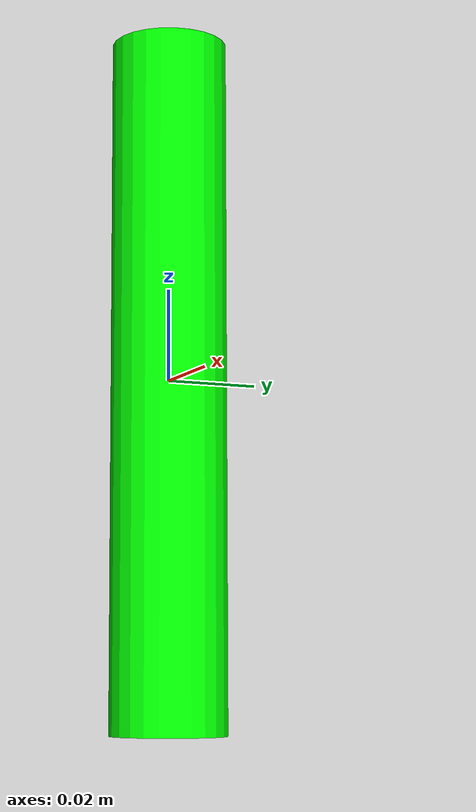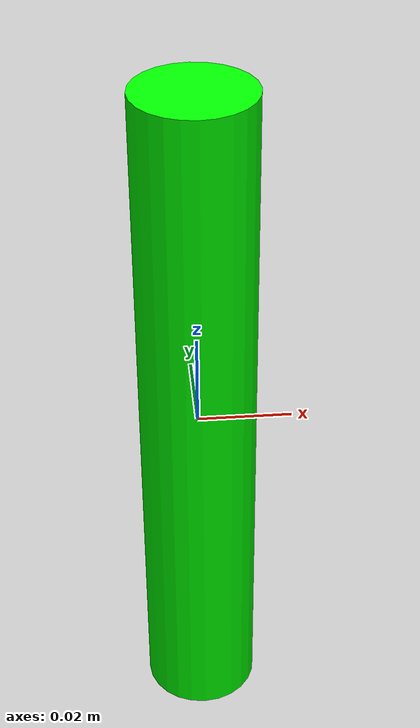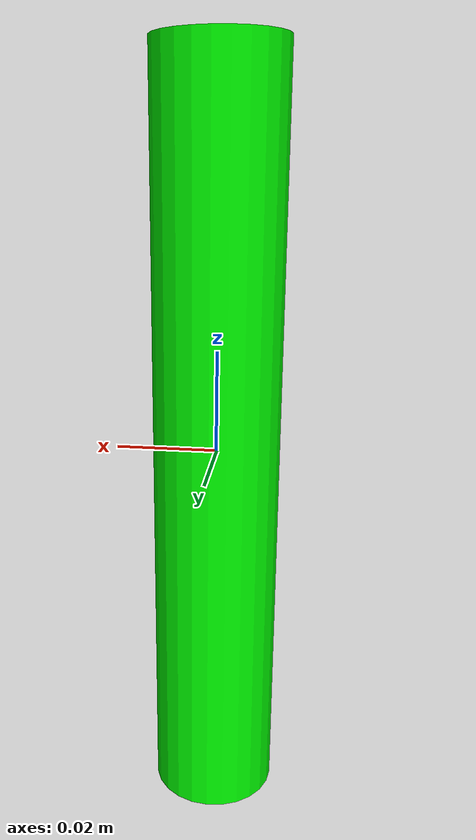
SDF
<?xml version="1.0" ?>
<sdf version="1.6">
  <model name="hello_mtc_with_perception_cylinder_green">
    <static>false</static>
    <link name="link">
      <inertial>
        <mass>0.050</mass>
        <inertia>
          <ixx>0.000000204</ixx>
          <ixy>0</ixy>
          <ixz>0</ixz>
          <iyy>0.000000204</iyy>
          <iyz>0</iyz>
          <izz>0.000000039</izz>
        </inertia>
      </inertial>
      <collision name="collision">
        <geometry>
          <cylinder>
            <radius>0.015</radius>
            <length>0.15</length>
          </cylinder>
        </geometry>
        <surface>
          <friction>
            <ode>
              <mu>0.8</mu>
              <mu2>0.8</mu2>
              <fdir1>0 0 1</fdir1>
              <slip1>0.001</slip1>
              <slip2>0.001</slip2>
            </ode>
            <torsional>
              <coefficient>0.1</coefficient>
              <surface_radius>0.015</surface_radius>
              <use_patch_radius>true</use_patch_radius>
            </torsional>
          </friction>
          <contact>
            <ode>
              <kp>1e5</kp>
              <kd>10</kd>
              <max_vel>0.1</max_vel>
              <min_depth>0.001</min_depth>
              <soft_cfm>0.01</soft_cfm>
              <soft_erp>0.2</soft_erp>
            </ode>
          </contact>
          <bounce>
            <restitution_coefficient>0.2</restitution_coefficient>
            <threshold>0.01</threshold>
          </bounce>
        </surface>
      </collision>
      <visual name="visual">
        <geometry>
          <cylinder>
            <radius>0.0125</radius>
            <length>0.15</length>
          </cylinder>
        </geometry>
        <material>
          <ambient>0.0 1.0 0.0 1</ambient>
          <diffuse>0.0 1.0 0.0 1</diffuse>
          <specular>0.5 0.5 0.5 1</specular>
          <emissive>0.0 0.1 0 1</emissive>
        </material>
      </visual>
    </link>
  </model>
</sdf>
